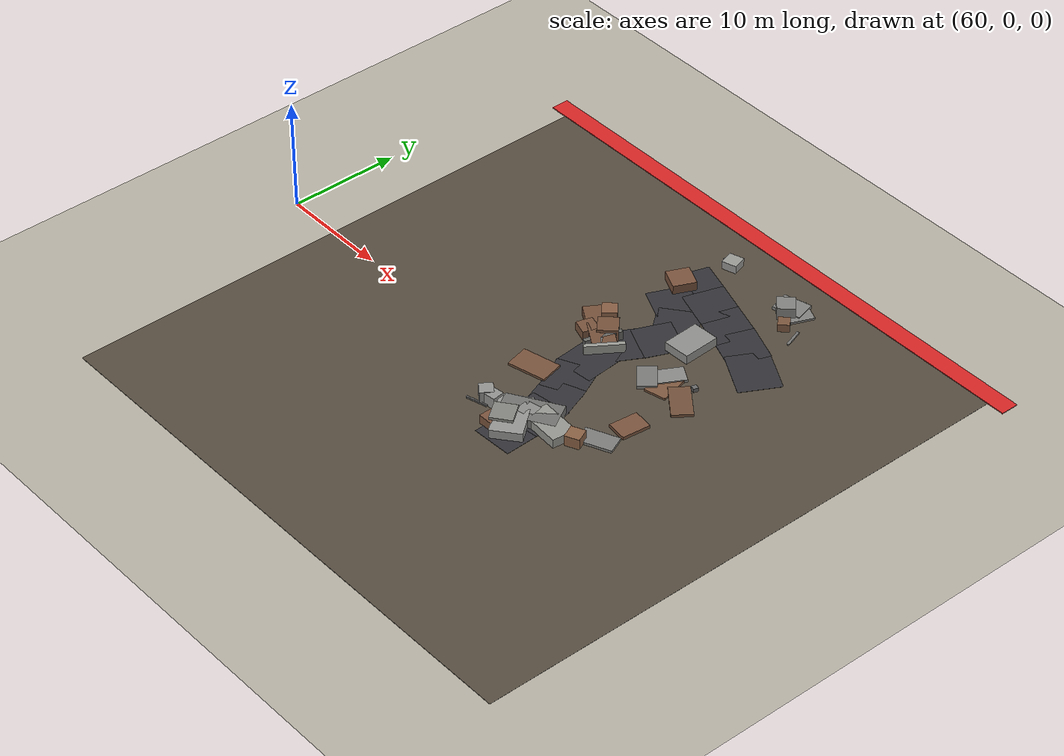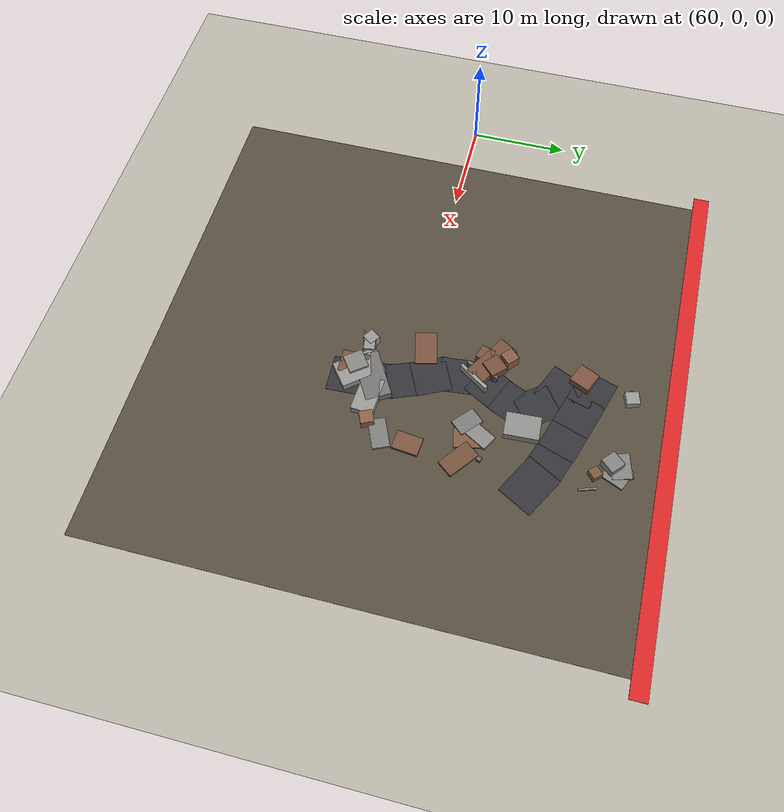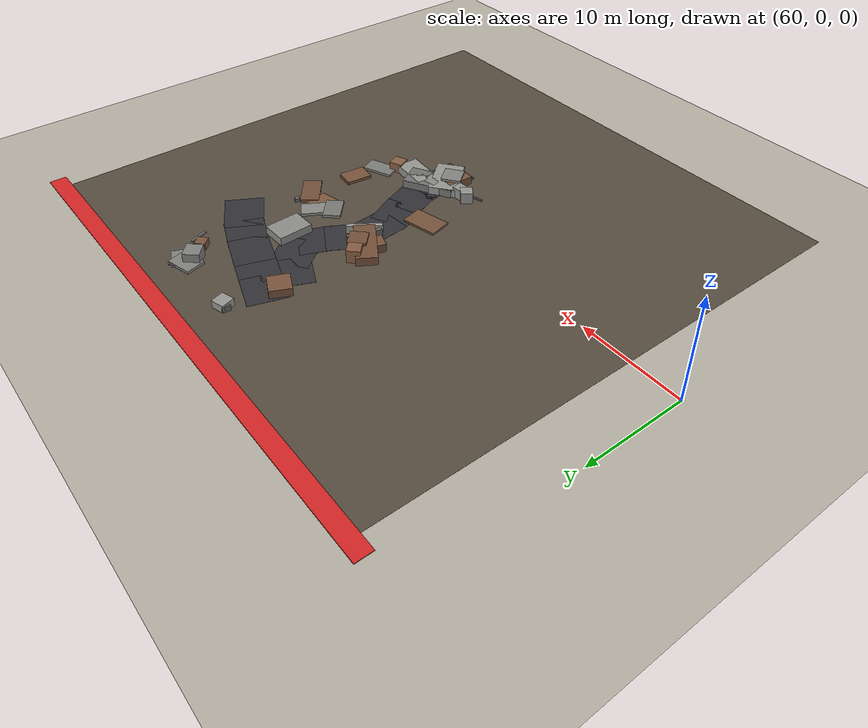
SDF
<sdf version="1.6">
 <world name="navitas_arena">
  <model name="ground_plane">
   <static>true</static>
   <link name="link">
    <collision name="collision">
     <geometry><plane><normal>0 0 1</normal><size>400 400</size></plane></geometry>
     <surface><friction><ode><mu>0.720</mu><mu2>0.720</mu2></ode></friction></surface>
    </collision>
    <visual name="visual">
     <cast_shadows>false</cast_shadows>
     <geometry><plane><normal>0 0 1</normal><size>400 400</size></plane></geometry>
     <material><ambient>0.720 0.700 0.650 1</ambient><diffuse>0.720 0.700 0.650 1</diffuse></material>
    </visual>
   </link>
  </model>
  <model name="gd_zor">
   <static>true</static>
   <pose>90.000 0.000 0.010 0 0 0.000</pose>
   <link name="link">
    <collision name="col"><geometry><box><size>50.000 50.000 0.020</size></box></geometry></collision>
    <visual name="vis">
     <geometry><box><size>50.000 50.000 0.020</size></box></geometry>
     <material><ambient>0.34 0.30 0.25 1</ambient><diffuse>0.34 0.30 0.25 1</diffuse></material>
    </visual>
   </link>
  </model>
  <model name="brd_zor_N">
   <static>true</static>
   <pose>90.000 25.800 0.040 0 0 0.000</pose>
   <link name="link">
    <collision name="col"><geometry><box><size>53.200 1.600 0.080</size></box></geometry></collision>
    <visual name="vis">
     <geometry><box><size>53.200 1.600 0.080</size></box></geometry>
     <material><ambient>0.85 0.15 0.15 1</ambient><diffuse>0.85 0.15 0.15 1</diffuse></material>
    </visual>
   </link>
  </model>
  <model name="road_zor_2_6">
   <static>true</static>
   <pose>93.560 -5.200 0.040 0 0 1.608</pose>
   <link name="link">
    <collision name="col"><geometry><box><size>3.702 3.680 0.020</size></box></geometry></collision>
    <visual name="vis">
     <geometry><box><size>3.702 3.680 0.020</size></box></geometry>
     <material><ambient>0.20 0.20 0.22 1</ambient><diffuse>0.20 0.20 0.22 1</diffuse></material>
    </visual>
   </link>
  </model>
  <model name="road_zor_2_7">
   <static>true</static>
   <pose>93.319 -2.400 0.040 0 0 1.705</pose>
   <link name="link">
    <collision name="col"><geometry><box><size>3.725 3.680 0.020</size></box></geometry></collision>
    <visual name="vis">
     <geometry><box><size>3.725 3.680 0.020</size></box></geometry>
     <material><ambient>0.20 0.20 0.22 1</ambient><diffuse>0.20 0.20 0.22 1</diffuse></material>
    </visual>
   </link>
  </model>
  <model name="road_zor_2_8">
   <static>true</static>
   <pose>92.687 0.167 0.040 0 0 1.935</pose>
   <link name="link">
    <collision name="col"><geometry><box><size>3.397 3.680 0.020</size></box></geometry></collision>
    <visual name="vis">
     <geometry><box><size>3.397 3.680 0.020</size></box></geometry>
     <material><ambient>0.20 0.20 0.22 1</ambient><diffuse>0.20 0.20 0.22 1</diffuse></material>
    </visual>
   </link>
  </model>
  <model name="road_zor_2_9">
   <static>true</static>
   <pose>91.686 2.500 0.040 0 0 2.016</pose>
   <link name="link">
    <collision name="col"><geometry><box><size>3.486 3.680 0.020</size></box></geometry></collision>
    <visual name="vis">
     <geometry><box><size>3.486 3.680 0.020</size></box></geometry>
     <material><ambient>0.20 0.20 0.22 1</ambient><diffuse>0.20 0.20 0.22 1</diffuse></material>
    </visual>
   </link>
  </model>
  <model name="road_zor_2_10">
   <static>true</static>
   <pose>90.973 5.431 0.040 0 0 1.658</pose>
   <link name="link">
    <collision name="col"><geometry><box><size>4.443 3.680 0.020</size></box></geometry></collision>
    <visual name="vis">
     <geometry><box><size>4.443 3.680 0.020</size></box></geometry>
     <material><ambient>0.20 0.20 0.22 1</ambient><diffuse>0.20 0.20 0.22 1</diffuse></material>
    </visual>
   </link>
  </model>
  <model name="road_zor_2_11">
   <static>true</static>
   <pose>91.508 8.426 0.040 0 0 1.060</pose>
   <link name="link">
    <collision name="col"><geometry><box><size>3.721 3.680 0.020</size></box></geometry></collision>
    <visual name="vis">
     <geometry><box><size>3.721 3.680 0.020</size></box></geometry>
     <material><ambient>0.20 0.20 0.22 1</ambient><diffuse>0.20 0.20 0.22 1</diffuse></material>
    </visual>
   </link>
  </model>
  <model name="road_zor_2_12">
   <static>true</static>
   <pose>92.701 10.817 0.040 0 0 1.162</pose>
   <link name="link">
    <collision name="col"><geometry><box><size>3.430 3.680 0.020</size></box></geometry></collision>
    <visual name="vis">
     <geometry><box><size>3.430 3.680 0.020</size></box></geometry>
     <material><ambient>0.20 0.20 0.22 1</ambient><diffuse>0.20 0.20 0.22 1</diffuse></material>
    </visual>
   </link>
  </model>
  <model name="road_zor_2_13">
   <static>true</static>
   <pose>92.299 13.151 0.040 0 0 2.228</pose>
   <link name="link">
    <collision name="col"><geometry><box><size>3.864 3.680 0.020</size></box></geometry></collision>
    <visual name="vis">
     <geometry><box><size>3.864 3.680 0.020</size></box></geometry>
     <material><ambient>0.20 0.20 0.22 1</ambient><diffuse>0.20 0.20 0.22 1</diffuse></material>
    </visual>
   </link>
  </model>
  <model name="road_zor_2_14">
   <static>true</static>
   <pose>90.107 14.896 0.040 0 0 2.723</pose>
   <link name="link">
    <collision name="col"><geometry><box><size>3.716 3.680 0.020</size></box></geometry></collision>
    <visual name="vis">
     <geometry><box><size>3.716 3.680 0.020</size></box></geometry>
     <material><ambient>0.20 0.20 0.22 1</ambient><diffuse>0.20 0.20 0.22 1</diffuse></material>
    </visual>
   </link>
  </model>
  <model name="road_zor_3_15">
   <static>true</static>
   <pose>100.469 13.861 0.040 0 0 2.637</pose>
   <link name="link">
    <collision name="col"><geometry><box><size>4.460 3.680 0.020</size></box></geometry></collision>
    <visual name="vis">
     <geometry><box><size>4.460 3.680 0.020</size></box></geometry>
     <material><ambient>0.20 0.20 0.22 1</ambient><diffuse>0.20 0.20 0.22 1</diffuse></material>
    </visual>
   </link>
  </model>
  <model name="road_zor_3_16">
   <static>true</static>
   <pose>97.624 15.214 0.040 0 0 2.777</pose>
   <link name="link">
    <collision name="col"><geometry><box><size>3.655 3.680 0.020</size></box></geometry></collision>
    <visual name="vis">
     <geometry><box><size>3.655 3.680 0.020</size></box></geometry>
     <material><ambient>0.20 0.20 0.22 1</ambient><diffuse>0.20 0.20 0.22 1</diffuse></material>
    </visual>
   </link>
  </model>
  <model name="road_zor_3_17">
   <static>true</static>
   <pose>94.969 16.160 0.040 0 0 2.821</pose>
   <link name="link">
    <collision name="col"><geometry><box><size>3.783 3.680 0.020</size></box></geometry></collision>
    <visual name="vis">
     <geometry><box><size>3.783 3.680 0.020</size></box></geometry>
     <material><ambient>0.20 0.20 0.22 1</ambient><diffuse>0.20 0.20 0.22 1</diffuse></material>
    </visual>
   </link>
  </model>
  <model name="road_zor_3_18">
   <static>true</static>
   <pose>92.254 17.058 0.040 0 0 2.824</pose>
   <link name="link">
    <collision name="col"><geometry><box><size>3.737 3.680 0.020</size></box></geometry></collision>
    <visual name="vis">
     <geometry><box><size>3.737 3.680 0.020</size></box></geometry>
     <material><ambient>0.20 0.20 0.22 1</ambient><diffuse>0.20 0.20 0.22 1</diffuse></material>
    </visual>
   </link>
  </model>
  <model name="road_zor_3_19">
   <static>true</static>
   <pose>89.612 17.910 0.040 0 0 2.835</pose>
   <link name="link">
    <collision name="col"><geometry><box><size>3.616 3.680 0.020</size></box></geometry></collision>
    <visual name="vis">
     <geometry><box><size>3.616 3.680 0.020</size></box></geometry>
     <material><ambient>0.20 0.20 0.22 1</ambient><diffuse>0.20 0.20 0.22 1</diffuse></material>
    </visual>
   </link>
  </model>
  <model name="blk_zor_2_0_0">
   <static>true</static>
   <pose>93.342 -2.911 0.425 0 0 0.534</pose>
   <link name="link">
    <collision name="col"><geometry><box><size>4.907 2.531 0.850</size></box></geometry></collision>
    <visual name="vis">
     <geometry><box><size>4.907 2.531 0.850</size></box></geometry>
     <material><ambient>0.45 0.45 0.44 1</ambient><diffuse>0.45 0.45 0.44 1</diffuse></material>
    </visual>
   </link>
  </model>
  <model name="blk_zor_2_0_1">
   <static>true</static>
   <pose>93.168 -2.960 0.425 0 0 1.769</pose>
   <link name="link">
    <collision name="col"><geometry><box><size>1.447 1.447 0.850</size></box></geometry></collision>
    <visual name="vis">
     <geometry><box><size>1.447 1.447 0.850</size></box></geometry>
     <material><ambient>0.55 0.55 0.54 1</ambient><diffuse>0.55 0.55 0.54 1</diffuse></material>
    </visual>
   </link>
  </model>
  <model name="blk_zor_2_0_2">
   <static>true</static>
   <pose>92.376 -4.774 0.548 0 0 0.642</pose>
   <link name="link">
    <collision name="col"><geometry><box><size>1.933 1.933 1.097</size></box></geometry></collision>
    <visual name="vis">
     <geometry><box><size>1.933 1.933 1.097</size></box></geometry>
     <material><ambient>0.52 0.52 0.50 1</ambient><diffuse>0.52 0.52 0.50 1</diffuse></material>
    </visual>
   </link>
  </model>
  <model name="blk_zor_2_0_3">
   <static>true</static>
   <pose>92.771 -4.354 0.425 0 0 2.244</pose>
   <link name="link">
    <collision name="col"><geometry><box><size>4.404 2.693 0.850</size></box></geometry></collision>
    <visual name="vis">
     <geometry><box><size>4.404 2.693 0.850</size></box></geometry>
     <material><ambient>0.59 0.59 0.58 1</ambient><diffuse>0.59 0.59 0.58 1</diffuse></material>
    </visual>
   </link>
  </model>
  <model name="blk_zor_2_0_4">
   <static>true</static>
   <pose>95.427 -2.738 0.425 0 0 3.073</pose>
   <link name="link">
    <collision name="col"><geometry><box><size>3.726 2.166 0.850</size></box></geometry></collision>
    <visual name="vis">
     <geometry><box><size>3.726 2.166 0.850</size></box></geometry>
     <material><ambient>0.59 0.59 0.57 1</ambient><diffuse>0.59 0.59 0.57 1</diffuse></material>
    </visual>
   </link>
  </model>
  <model name="blk_zor_2_0_5">
   <static>true</static>
   <pose>92.480 -4.967 0.425 0 0 1.572</pose>
   <link name="link">
    <collision name="col"><geometry><box><size>2.658 2.348 0.850</size></box></geometry></collision>
    <visual name="vis">
     <geometry><box><size>2.658 2.348 0.850</size></box></geometry>
     <material><ambient>0.48 0.33 0.24 1</ambient><diffuse>0.48 0.33 0.24 1</diffuse></material>
    </visual>
   </link>
  </model>
  <model name="blk_zor_2_1_0">
   <static>true</static>
   <pose>90.329 6.580 0.425 0 0 2.241</pose>
   <link name="link">
    <collision name="col"><geometry><box><size>0.719 0.719 0.850</size></box></geometry></collision>
    <visual name="vis">
     <geometry><box><size>0.719 0.719 0.850</size></box></geometry>
     <material><ambient>0.52 0.52 0.51 1</ambient><diffuse>0.52 0.52 0.51 1</diffuse></material>
    </visual>
   </link>
  </model>
  <model name="blk_zor_2_1_1">
   <static>true</static>
   <pose>91.082 6.608 0.425 0 0 0.973</pose>
   <link name="link">
    <collision name="col"><geometry><box><size>3.349 0.373 0.850</size></box></geometry></collision>
    <visual name="vis">
     <geometry><box><size>3.349 0.373 0.850</size></box></geometry>
     <material><ambient>0.61 0.61 0.59 1</ambient><diffuse>0.61 0.61 0.59 1</diffuse></material>
    </visual>
   </link>
  </model>
  <model name="blk_zor_2_1_2">
   <static>true</static>
   <pose>88.413 7.192 0.425 0 0 1.262</pose>
   <link name="link">
    <collision name="col"><geometry><box><size>1.447 1.447 0.850</size></box></geometry></collision>
    <visual name="vis">
     <geometry><box><size>1.447 1.447 0.850</size></box></geometry>
     <material><ambient>0.47 0.33 0.24 1</ambient><diffuse>0.47 0.33 0.24 1</diffuse></material>
    </visual>
   </link>
  </model>
  <model name="blk_zor_2_1_3">
   <static>true</static>
   <pose>89.584 8.318 0.546 0 0 0.796</pose>
   <link name="link">
    <collision name="col"><geometry><box><size>1.741 1.741 1.092</size></box></geometry></collision>
    <visual name="vis">
     <geometry><box><size>1.741 1.741 1.092</size></box></geometry>
     <material><ambient>0.46 0.32 0.23 1</ambient><diffuse>0.46 0.32 0.23 1</diffuse></material>
    </visual>
   </link>
  </model>
  <model name="blk_zor_2_1_4">
   <static>true</static>
   <pose>89.007 7.936 0.425 0 0 2.586</pose>
   <link name="link">
    <collision name="col"><geometry><box><size>4.900 2.011 0.850</size></box></geometry></collision>
    <visual name="vis">
     <geometry><box><size>4.900 2.011 0.850</size></box></geometry>
     <material><ambient>0.46 0.32 0.23 1</ambient><diffuse>0.46 0.32 0.23 1</diffuse></material>
    </visual>
   </link>
  </model>
  <model name="blk_zor_2_1_5">
   <static>true</static>
   <pose>90.174 7.260 0.425 0 0 1.253</pose>
   <link name="link">
    <collision name="col"><geometry><box><size>3.280 0.372 0.850</size></box></geometry></collision>
    <visual name="vis">
     <geometry><box><size>3.280 0.372 0.850</size></box></geometry>
     <material><ambient>0.41 0.41 0.40 1</ambient><diffuse>0.41 0.41 0.40 1</diffuse></material>
    </visual>
   </link>
  </model>
  <model name="blk_zor_2_2_4">
   <static>true</static>
   <pose>88.673 16.926 0.425 0 0 2.717</pose>
   <link name="link">
    <collision name="col"><geometry><box><size>2.039 2.039 0.850</size></box></geometry></collision>
    <visual name="vis">
     <geometry><box><size>2.039 2.039 0.850</size></box></geometry>
     <material><ambient>0.48 0.33 0.24 1</ambient><diffuse>0.48 0.33 0.24 1</diffuse></material>
    </visual>
   </link>
  </model>
  <model name="deb_zor_11">
   <static>true</static>
   <pose>97.790 -2.210 0.492 0 0 2.002</pose>
   <link name="link">
    <collision name="col"><geometry><box><size>1.284 1.284 0.984</size></box></geometry></collision>
    <visual name="vis">
     <geometry><box><size>1.284 1.284 0.984</size></box></geometry>
     <material><ambient>0.54 0.38 0.27 1</ambient><diffuse>0.54 0.38 0.27 1</diffuse></material>
    </visual>
   </link>
  </model>
  <model name="deb_zor_13">
   <static>true</static>
   <pose>88.370 9.541 0.661 0 0 0.802</pose>
   <link name="link">
    <collision name="col"><geometry><box><size>1.293 1.293 1.321</size></box></geometry></collision>
    <visual name="vis">
     <geometry><box><size>1.293 1.293 1.321</size></box></geometry>
     <material><ambient>0.53 0.37 0.27 1</ambient><diffuse>0.53 0.37 0.27 1</diffuse></material>
    </visual>
   </link>
  </model>
  <model name="deb_zor_14">
   <static>true</static>
   <pose>89.237 -4.852 0.086 0 0 0.269</pose>
   <link name="link">
    <collision name="col"><geometry><box><size>1.953 0.155 0.172</size></box></geometry></collision>
    <visual name="vis">
     <geometry><box><size>1.953 0.155 0.172</size></box></geometry>
     <material><ambient>0.41 0.41 0.41 1</ambient><diffuse>0.41 0.41 0.41 1</diffuse></material>
    </visual>
   </link>
  </model>
  <model name="deb_zor_38">
   <static>true</static>
   <pose>97.505 21.399 0.108 0 0 1.174</pose>
   <link name="link">
    <collision name="col"><geometry><box><size>2.243 2.114 0.215</size></box></geometry></collision>
    <visual name="vis">
     <geometry><box><size>2.243 2.114 0.215</size></box></geometry>
     <material><ambient>0.51 0.51 0.50 1</ambient><diffuse>0.51 0.51 0.50 1</diffuse></material>
    </visual>
   </link>
  </model>
  <model name="deb_zor_45">
   <static>true</static>
   <pose>89.290 21.738 0.287 0 0 3.044</pose>
   <link name="link">
    <collision name="col"><geometry><box><size>0.782 0.782 0.574</size></box></geometry></collision>
    <visual name="vis">
     <geometry><box><size>0.782 0.782 0.574</size></box></geometry>
     <material><ambient>0.43 0.43 0.42 1</ambient><diffuse>0.43 0.43 0.42 1</diffuse></material>
    </visual>
   </link>
  </model>
  <model name="deb_zor_58">
   <static>true</static>
   <pose>89.682 21.678 0.378 0 0 0.297</pose>
   <link name="link">
    <collision name="col"><geometry><box><size>1.298 1.298 0.756</size></box></geometry></collision>
    <visual name="vis">
     <geometry><box><size>1.298 1.298 0.756</size></box></geometry>
     <material><ambient>0.60 0.60 0.59 1</ambient><diffuse>0.60 0.60 0.59 1</diffuse></material>
    </visual>
   </link>
  </model>
  <model name="deb_zor_65">
   <static>true</static>
   <pose>99.554 19.001 0.076 0 0 1.895</pose>
   <link name="link">
    <collision name="col"><geometry><box><size>1.765 0.217 0.153</size></box></geometry></collision>
    <visual name="vis">
     <geometry><box><size>1.765 0.217 0.153</size></box></geometry>
     <material><ambient>0.46 0.46 0.45 1</ambient><diffuse>0.46 0.46 0.45 1</diffuse></material>
    </visual>
   </link>
  </model>
  <model name="deb_zor_67">
   <static>true</static>
   <pose>96.834 20.786 0.567 0 0 2.405</pose>
   <link name="link">
    <collision name="col"><geometry><box><size>1.533 1.533 1.134</size></box></geometry></collision>
    <visual name="vis">
     <geometry><box><size>1.533 1.533 1.134</size></box></geometry>
     <material><ambient>0.51 0.51 0.50 1</ambient><diffuse>0.51 0.51 0.50 1</diffuse></material>
    </visual>
   </link>
  </model>
  <model name="deb_zor_86">
   <static>true</static>
   <pose>98.053 19.406 0.375 0 0 2.309</pose>
   <link name="link">
    <collision name="col"><geometry><box><size>0.999 0.999 0.750</size></box></geometry></collision>
    <visual name="vis">
     <geometry><box><size>0.999 0.999 0.750</size></box></geometry>
     <material><ambient>0.48 0.34 0.24 1</ambient><diffuse>0.48 0.34 0.24 1</diffuse></material>
    </visual>
   </link>
  </model>
  <model name="deb_zor_88">
   <static>true</static>
   <pose>90.241 -4.001 0.551 0 0 1.703</pose>
   <link name="link">
    <collision name="col"><geometry><box><size>1.078 1.078 1.101</size></box></geometry></collision>
    <visual name="vis">
     <geometry><box><size>1.078 1.078 1.101</size></box></geometry>
     <material><ambient>0.58 0.58 0.57 1</ambient><diffuse>0.58 0.58 0.57 1</diffuse></material>
    </visual>
   </link>
  </model>
  <model name="deb_zor_109">
   <static>true</static>
   <pose>96.701 21.596 0.149 0 0 0.267</pose>
   <link name="link">
    <collision name="col"><geometry><box><size>2.544 1.880 0.299</size></box></geometry></collision>
    <visual name="vis">
     <geometry><box><size>2.544 1.880 0.299</size></box></geometry>
     <material><ambient>0.51 0.51 0.50 1</ambient><diffuse>0.51 0.51 0.50 1</diffuse></material>
    </visual>
   </link>
  </model>
  <model name="deb_zor_111">
   <static>true</static>
   <pose>98.835 -0.753 0.125 0 0 0.413</pose>
   <link name="link">
    <collision name="col"><geometry><box><size>2.997 1.679 0.251</size></box></geometry></collision>
    <visual name="vis">
     <geometry><box><size>2.997 1.679 0.251</size></box></geometry>
     <material><ambient>0.49 0.49 0.48 1</ambient><diffuse>0.49 0.49 0.48 1</diffuse></material>
    </visual>
   </link>
  </model>
  <model name="deb_zor_125">
   <static>true</static>
   <pose>99.185 2.095 0.155 0 0 1.462</pose>
   <link name="link">
    <collision name="col"><geometry><box><size>2.550 1.836 0.311</size></box></geometry></collision>
    <visual name="vis">
     <geometry><box><size>2.550 1.836 0.311</size></box></geometry>
     <material><ambient>0.48 0.33 0.24 1</ambient><diffuse>0.48 0.33 0.24 1</diffuse></material>
    </visual>
   </link>
  </model>
  <model name="deb_zor_138">
   <static>true</static>
   <pose>88.801 1.316 0.114 0 0 0.236</pose>
   <link name="link">
    <collision name="col"><geometry><box><size>3.478 2.172 0.227</size></box></geometry></collision>
    <visual name="vis">
     <geometry><box><size>3.478 2.172 0.227</size></box></geometry>
     <material><ambient>0.47 0.33 0.24 1</ambient><diffuse>0.47 0.33 0.24 1</diffuse></material>
    </visual>
   </link>
  </model>
  <model name="deb_zor_160">
   <static>true</static>
   <pose>95.698 6.991 0.158 0 0 2.410</pose>
   <link name="link">
    <collision name="col"><geometry><box><size>2.459 1.670 0.317</size></box></geometry></collision>
    <visual name="vis">
     <geometry><box><size>2.459 1.670 0.317</size></box></geometry>
     <material><ambient>0.48 0.48 0.47 1</ambient><diffuse>0.48 0.48 0.47 1</diffuse></material>
    </visual>
   </link>
  </model>
  <model name="deb_zor_165">
   <static>true</static>
   <pose>89.393 -4.038 0.569 0 0 0.946</pose>
   <link name="link">
    <collision name="col"><geometry><box><size>1.165 1.165 1.137</size></box></geometry></collision>
    <visual name="vis">
     <geometry><box><size>1.165 1.165 1.137</size></box></geometry>
     <material><ambient>0.58 0.58 0.57 1</ambient><diffuse>0.58 0.58 0.57 1</diffuse></material>
    </visual>
   </link>
  </model>
  <model name="deb_zor_172">
   <static>true</static>
   <pose>96.581 8.121 0.152 0 0 1.052</pose>
   <link name="link">
    <collision name="col"><geometry><box><size>3.230 1.609 0.304</size></box></geometry></collision>
    <visual name="vis">
     <geometry><box><size>3.230 1.609 0.304</size></box></geometry>
     <material><ambient>0.54 0.54 0.53 1</ambient><diffuse>0.54 0.54 0.53 1</diffuse></material>
    </visual>
   </link>
  </model>
  <model name="deb_zor_194">
   <static>true</static>
   <pose>99.551 7.029 0.132 0 0 2.484</pose>
   <link name="link">
    <collision name="col"><geometry><box><size>3.360 1.798 0.264</size></box></geometry></collision>
    <visual name="vis">
     <geometry><box><size>3.360 1.798 0.264</size></box></geometry>
     <material><ambient>0.45 0.32 0.23 1</ambient><diffuse>0.45 0.32 0.23 1</diffuse></material>
    </visual>
   </link>
  </model>
  <model name="deb_zor_199">
   <static>true</static>
   <pose>99.139 8.871 0.189 0 0 2.779</pose>
   <link name="link">
    <collision name="col"><geometry><box><size>0.441 0.441 0.378</size></box></geometry></collision>
    <visual name="vis">
     <geometry><box><size>0.441 0.441 0.378</size></box></geometry>
     <material><ambient>0.41 0.41 0.41 1</ambient><diffuse>0.41 0.41 0.41 1</diffuse></material>
    </visual>
   </link>
  </model>
  <model name="deb_zor_215">
   <static>true</static>
   <pose>97.349 22.113 0.078 0 0 1.357</pose>
   <link name="link">
    <collision name="col"><geometry><box><size>1.694 0.176 0.156</size></box></geometry></collision>
    <visual name="vis">
     <geometry><box><size>1.694 0.176 0.156</size></box></geometry>
     <material><ambient>0.44 0.44 0.43 1</ambient><diffuse>0.44 0.44 0.43 1</diffuse></material>
    </visual>
   </link>
  </model>
  <model name="deb_zor_218">
   <static>true</static>
   <pose>97.279 7.349 0.101 0 0 1.804</pose>
   <link name="link">
    <collision name="col"><geometry><box><size>2.642 1.975 0.202</size></box></geometry></collision>
    <visual name="vis">
     <geometry><box><size>2.642 1.975 0.202</size></box></geometry>
     <material><ambient>0.50 0.35 0.25 1</ambient><diffuse>0.50 0.35 0.25 1</diffuse></material>
    </visual>
   </link>
  </model>
  <model name="chic_zor_4">
   <static>true</static>
   <pose>95.123 12.124 0.425 0 0 1.618</pose>
   <link name="link">
    <collision name="col"><geometry><box><size>3.342 2.389 0.850</size></box></geometry></collision>
    <visual name="vis">
     <geometry><box><size>3.342 2.389 0.850</size></box></geometry>
     <material><ambient>0.56 0.56 0.55 1</ambient><diffuse>0.56 0.56 0.55 1</diffuse></material>
    </visual>
   </link>
  </model>
 </world>
</sdf>
